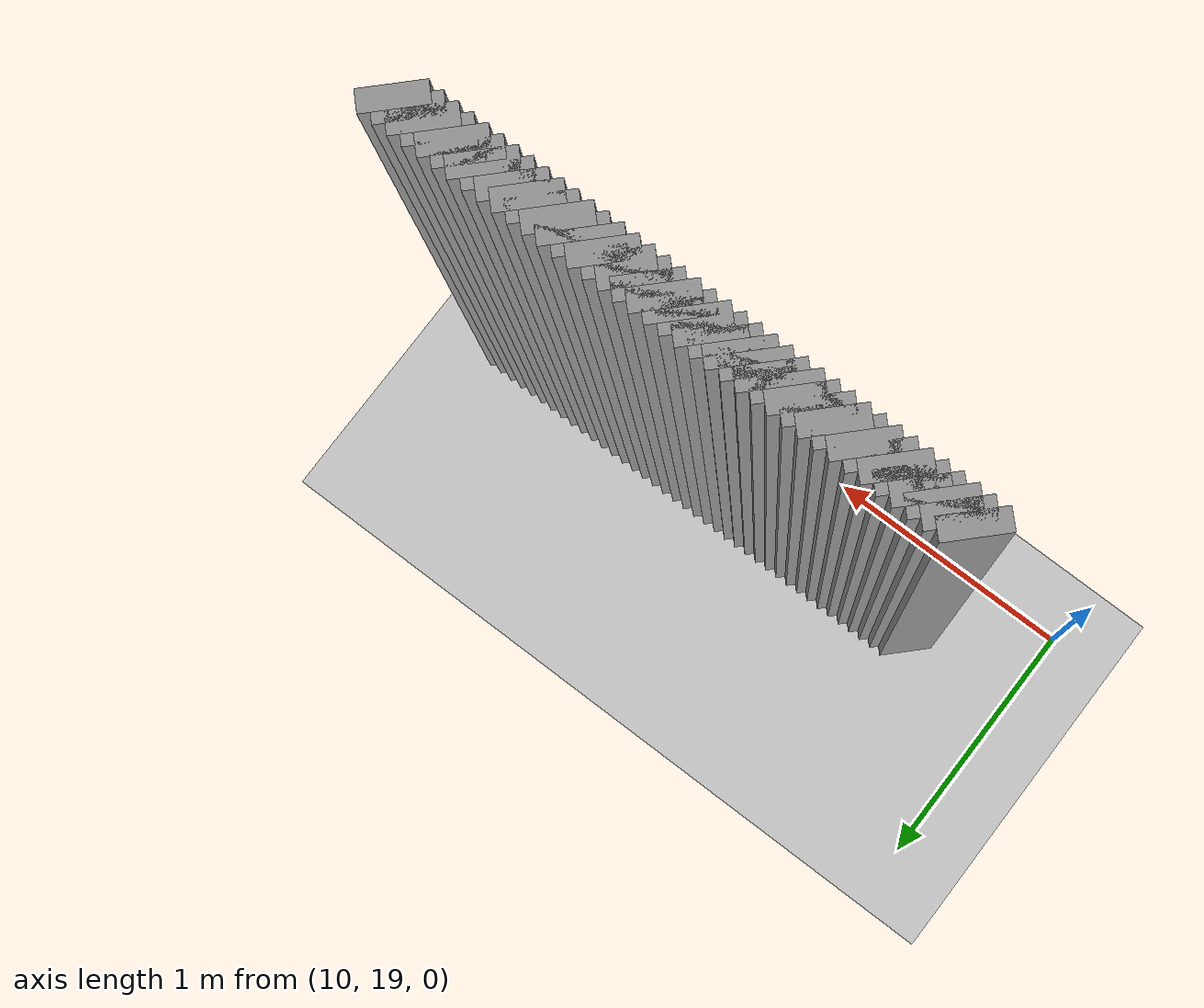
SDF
<sdf version="1.5">
 <world name="default">
  <include><uri>model://ground_plane</uri></include>
  <include><uri>model://sun</uri></include>
  <model name="grey_wall_396">
   <static>1</static>
   <link name="link">
    <pose>10.45 19.35  1.4 0 0 -0.785398163397</pose>
    <collision name="collision"><geometry><box><size>0.0707106781187 .2  2.8</size></box></geometry></collision>
    <visual name="visual">
     <cast_shadows>0</cast_shadows>
     <geometry><box><size>0.0707106781187 .2  2.8</size></box></geometry>
     <material>
      <script>
       <uri>model://grey_wall/materials/scripts</uri>
       <uri>model://grey_wall/materials/textures</uri>
       <name>vrc/grey_wall</name>
      </script>
     </material>
    </visual>
   </link>
  </model>
  <model name="grey_wall_397">
   <static>1</static>
   <link name="link">
    <pose>10.5 19.35  1.4 0 0 -0.785398163397</pose>
    <collision name="collision"><geometry><box><size>0.0707106781187 .2  2.8</size></box></geometry></collision>
    <visual name="visual">
     <cast_shadows>0</cast_shadows>
     <geometry><box><size>0.0707106781187 .2  2.8</size></box></geometry>
     <material>
      <script>
       <uri>model://grey_wall/materials/scripts</uri>
       <uri>model://grey_wall/materials/textures</uri>
       <name>vrc/grey_wall</name>
      </script>
     </material>
    </visual>
   </link>
  </model>
  <model name="grey_wall_398">
   <static>1</static>
   <link name="link">
    <pose>10.55 19.35  1.4 0 0 -0.785398163397</pose>
    <collision name="collision"><geometry><box><size>0.0707106781187 .2  2.8</size></box></geometry></collision>
    <visual name="visual">
     <cast_shadows>0</cast_shadows>
     <geometry><box><size>0.0707106781187 .2  2.8</size></box></geometry>
     <material>
      <script>
       <uri>model://grey_wall/materials/scripts</uri>
       <uri>model://grey_wall/materials/textures</uri>
       <name>vrc/grey_wall</name>
      </script>
     </material>
    </visual>
   </link>
  </model>
  <model name="grey_wall_399">
   <static>1</static>
   <link name="link">
    <pose>10.6 19.35  1.4 0 0 -0.785398163397</pose>
    <collision name="collision"><geometry><box><size>0.0707106781187 .2  2.8</size></box></geometry></collision>
    <visual name="visual">
     <cast_shadows>0</cast_shadows>
     <geometry><box><size>0.0707106781187 .2  2.8</size></box></geometry>
     <material>
      <script>
       <uri>model://grey_wall/materials/scripts</uri>
       <uri>model://grey_wall/materials/textures</uri>
       <name>vrc/grey_wall</name>
      </script>
     </material>
    </visual>
   </link>
  </model>
  <model name="grey_wall_400">
   <static>1</static>
   <link name="link">
    <pose>10.65 19.35  1.4 0 0 -0.785398163397</pose>
    <collision name="collision"><geometry><box><size>0.0707106781187 .2  2.8</size></box></geometry></collision>
    <visual name="visual">
     <cast_shadows>0</cast_shadows>
     <geometry><box><size>0.0707106781187 .2  2.8</size></box></geometry>
     <material>
      <script>
       <uri>model://grey_wall/materials/scripts</uri>
       <uri>model://grey_wall/materials/textures</uri>
       <name>vrc/grey_wall</name>
      </script>
     </material>
    </visual>
   </link>
  </model>
  <model name="grey_wall_401">
   <static>1</static>
   <link name="link">
    <pose>10.7 19.35  1.4 0 0 -0.785398163397</pose>
    <collision name="collision"><geometry><box><size>0.0707106781187 .2  2.8</size></box></geometry></collision>
    <visual name="visual">
     <cast_shadows>0</cast_shadows>
     <geometry><box><size>0.0707106781187 .2  2.8</size></box></geometry>
     <material>
      <script>
       <uri>model://grey_wall/materials/scripts</uri>
       <uri>model://grey_wall/materials/textures</uri>
       <name>vrc/grey_wall</name>
      </script>
     </material>
    </visual>
   </link>
  </model>
  <model name="grey_wall_402">
   <static>1</static>
   <link name="link">
    <pose>10.75 19.35  1.4 0 0 -0.785398163397</pose>
    <collision name="collision"><geometry><box><size>0.0707106781187 .2  2.8</size></box></geometry></collision>
    <visual name="visual">
     <cast_shadows>0</cast_shadows>
     <geometry><box><size>0.0707106781187 .2  2.8</size></box></geometry>
     <material>
      <script>
       <uri>model://grey_wall/materials/scripts</uri>
       <uri>model://grey_wall/materials/textures</uri>
       <name>vrc/grey_wall</name>
      </script>
     </material>
    </visual>
   </link>
  </model>
  <model name="grey_wall_403">
   <static>1</static>
   <link name="link">
    <pose>10.8 19.35  1.4 0 0 -0.785398163397</pose>
    <collision name="collision"><geometry><box><size>0.0707106781187 .2  2.8</size></box></geometry></collision>
    <visual name="visual">
     <cast_shadows>0</cast_shadows>
     <geometry><box><size>0.0707106781187 .2  2.8</size></box></geometry>
     <material>
      <script>
       <uri>model://grey_wall/materials/scripts</uri>
       <uri>model://grey_wall/materials/textures</uri>
       <name>vrc/grey_wall</name>
      </script>
     </material>
    </visual>
   </link>
  </model>
  <model name="grey_wall_404">
   <static>1</static>
   <link name="link">
    <pose>10.85 19.35  1.4 0 0 -0.785398163397</pose>
    <collision name="collision"><geometry><box><size>0.0707106781187 .2  2.8</size></box></geometry></collision>
    <visual name="visual">
     <cast_shadows>0</cast_shadows>
     <geometry><box><size>0.0707106781187 .2  2.8</size></box></geometry>
     <material>
      <script>
       <uri>model://grey_wall/materials/scripts</uri>
       <uri>model://grey_wall/materials/textures</uri>
       <name>vrc/grey_wall</name>
      </script>
     </material>
    </visual>
   </link>
  </model>
  <model name="grey_wall_405">
   <static>1</static>
   <link name="link">
    <pose>10.9 19.35  1.4 0 0 -0.785398163397</pose>
    <collision name="collision"><geometry><box><size>0.0707106781187 .2  2.8</size></box></geometry></collision>
    <visual name="visual">
     <cast_shadows>0</cast_shadows>
     <geometry><box><size>0.0707106781187 .2  2.8</size></box></geometry>
     <material>
      <script>
       <uri>model://grey_wall/materials/scripts</uri>
       <uri>model://grey_wall/materials/textures</uri>
       <name>vrc/grey_wall</name>
      </script>
     </material>
    </visual>
   </link>
  </model>
  <model name="grey_wall_406">
   <static>1</static>
   <link name="link">
    <pose>10.95 19.35  1.4 0 0 -0.785398163397</pose>
    <collision name="collision"><geometry><box><size>0.0707106781187 .2  2.8</size></box></geometry></collision>
    <visual name="visual">
     <cast_shadows>0</cast_shadows>
     <geometry><box><size>0.0707106781187 .2  2.8</size></box></geometry>
     <material>
      <script>
       <uri>model://grey_wall/materials/scripts</uri>
       <uri>model://grey_wall/materials/textures</uri>
       <name>vrc/grey_wall</name>
      </script>
     </material>
    </visual>
   </link>
  </model>
  <model name="grey_wall_407">
   <static>1</static>
   <link name="link">
    <pose>11.0 19.35  1.4 0 0 -0.785398163397</pose>
    <collision name="collision"><geometry><box><size>0.0707106781187 .2  2.8</size></box></geometry></collision>
    <visual name="visual">
     <cast_shadows>0</cast_shadows>
     <geometry><box><size>0.0707106781187 .2  2.8</size></box></geometry>
     <material>
      <script>
       <uri>model://grey_wall/materials/scripts</uri>
       <uri>model://grey_wall/materials/textures</uri>
       <name>vrc/grey_wall</name>
      </script>
     </material>
    </visual>
   </link>
  </model>
  <model name="grey_wall_408">
   <static>1</static>
   <link name="link">
    <pose>11.05 19.35  1.4 0 0 -0.785398163397</pose>
    <collision name="collision"><geometry><box><size>0.0707106781187 .2  2.8</size></box></geometry></collision>
    <visual name="visual">
     <cast_shadows>0</cast_shadows>
     <geometry><box><size>0.0707106781187 .2  2.8</size></box></geometry>
     <material>
      <script>
       <uri>model://grey_wall/materials/scripts</uri>
       <uri>model://grey_wall/materials/textures</uri>
       <name>vrc/grey_wall</name>
      </script>
     </material>
    </visual>
   </link>
  </model>
  <model name="grey_wall_409">
   <static>1</static>
   <link name="link">
    <pose>11.1 19.35  1.4 0 0 -0.785398163397</pose>
    <collision name="collision"><geometry><box><size>0.0707106781187 .2  2.8</size></box></geometry></collision>
    <visual name="visual">
     <cast_shadows>0</cast_shadows>
     <geometry><box><size>0.0707106781187 .2  2.8</size></box></geometry>
     <material>
      <script>
       <uri>model://grey_wall/materials/scripts</uri>
       <uri>model://grey_wall/materials/textures</uri>
       <name>vrc/grey_wall</name>
      </script>
     </material>
    </visual>
   </link>
  </model>
  <model name="grey_wall_410">
   <static>1</static>
   <link name="link">
    <pose>11.15 19.35  1.4 0 0 -0.785398163397</pose>
    <collision name="collision"><geometry><box><size>0.0707106781187 .2  2.8</size></box></geometry></collision>
    <visual name="visual">
     <cast_shadows>0</cast_shadows>
     <geometry><box><size>0.0707106781187 .2  2.8</size></box></geometry>
     <material>
      <script>
       <uri>model://grey_wall/materials/scripts</uri>
       <uri>model://grey_wall/materials/textures</uri>
       <name>vrc/grey_wall</name>
      </script>
     </material>
    </visual>
   </link>
  </model>
  <model name="grey_wall_411">
   <static>1</static>
   <link name="link">
    <pose>11.2 19.35  1.4 0 0 -0.785398163397</pose>
    <collision name="collision"><geometry><box><size>0.0707106781187 .2  2.8</size></box></geometry></collision>
    <visual name="visual">
     <cast_shadows>0</cast_shadows>
     <geometry><box><size>0.0707106781187 .2  2.8</size></box></geometry>
     <material>
      <script>
       <uri>model://grey_wall/materials/scripts</uri>
       <uri>model://grey_wall/materials/textures</uri>
       <name>vrc/grey_wall</name>
      </script>
     </material>
    </visual>
   </link>
  </model>
  <model name="grey_wall_412">
   <static>1</static>
   <link name="link">
    <pose>11.25 19.35  1.4 0 0 -0.785398163397</pose>
    <collision name="collision"><geometry><box><size>0.0707106781187 .2  2.8</size></box></geometry></collision>
    <visual name="visual">
     <cast_shadows>0</cast_shadows>
     <geometry><box><size>0.0707106781187 .2  2.8</size></box></geometry>
     <material>
      <script>
       <uri>model://grey_wall/materials/scripts</uri>
       <uri>model://grey_wall/materials/textures</uri>
       <name>vrc/grey_wall</name>
      </script>
     </material>
    </visual>
   </link>
  </model>
  <model name="grey_wall_413">
   <static>1</static>
   <link name="link">
    <pose>11.3 19.35  1.4 0 0 -0.785398163397</pose>
    <collision name="collision"><geometry><box><size>0.0707106781187 .2  2.8</size></box></geometry></collision>
    <visual name="visual">
     <cast_shadows>0</cast_shadows>
     <geometry><box><size>0.0707106781187 .2  2.8</size></box></geometry>
     <material>
      <script>
       <uri>model://grey_wall/materials/scripts</uri>
       <uri>model://grey_wall/materials/textures</uri>
       <name>vrc/grey_wall</name>
      </script>
     </material>
    </visual>
   </link>
  </model>
  <model name="grey_wall_414">
   <static>1</static>
   <link name="link">
    <pose>11.35 19.35  1.4 0 0 -0.785398163397</pose>
    <collision name="collision"><geometry><box><size>0.0707106781187 .2  2.8</size></box></geometry></collision>
    <visual name="visual">
     <cast_shadows>0</cast_shadows>
     <geometry><box><size>0.0707106781187 .2  2.8</size></box></geometry>
     <material>
      <script>
       <uri>model://grey_wall/materials/scripts</uri>
       <uri>model://grey_wall/materials/textures</uri>
       <name>vrc/grey_wall</name>
      </script>
     </material>
    </visual>
   </link>
  </model>
  <model name="grey_wall_415">
   <static>1</static>
   <link name="link">
    <pose>11.4 19.35  1.4 0 0 -0.785398163397</pose>
    <collision name="collision"><geometry><box><size>0.0707106781187 .2  2.8</size></box></geometry></collision>
    <visual name="visual">
     <cast_shadows>0</cast_shadows>
     <geometry><box><size>0.0707106781187 .2  2.8</size></box></geometry>
     <material>
      <script>
       <uri>model://grey_wall/materials/scripts</uri>
       <uri>model://grey_wall/materials/textures</uri>
       <name>vrc/grey_wall</name>
      </script>
     </material>
    </visual>
   </link>
  </model>
  <model name="grey_wall_416">
   <static>1</static>
   <link name="link">
    <pose>11.45 19.35  1.4 0 0 -0.785398163397</pose>
    <collision name="collision"><geometry><box><size>0.0707106781187 .2  2.8</size></box></geometry></collision>
    <visual name="visual">
     <cast_shadows>0</cast_shadows>
     <geometry><box><size>0.0707106781187 .2  2.8</size></box></geometry>
     <material>
      <script>
       <uri>model://grey_wall/materials/scripts</uri>
       <uri>model://grey_wall/materials/textures</uri>
       <name>vrc/grey_wall</name>
      </script>
     </material>
    </visual>
   </link>
  </model>
  <model name="grey_wall_417">
   <static>1</static>
   <link name="link">
    <pose>11.5 19.35  1.4 0 0 -0.785398163397</pose>
    <collision name="collision"><geometry><box><size>0.0707106781187 .2  2.8</size></box></geometry></collision>
    <visual name="visual">
     <cast_shadows>0</cast_shadows>
     <geometry><box><size>0.0707106781187 .2  2.8</size></box></geometry>
     <material>
      <script>
       <uri>model://grey_wall/materials/scripts</uri>
       <uri>model://grey_wall/materials/textures</uri>
       <name>vrc/grey_wall</name>
      </script>
     </material>
    </visual>
   </link>
  </model>
  <model name="grey_wall_418">
   <static>1</static>
   <link name="link">
    <pose>11.55 19.35  1.4 0 0 -0.785398163397</pose>
    <collision name="collision"><geometry><box><size>0.0707106781187 .2  2.8</size></box></geometry></collision>
    <visual name="visual">
     <cast_shadows>0</cast_shadows>
     <geometry><box><size>0.0707106781187 .2  2.8</size></box></geometry>
     <material>
      <script>
       <uri>model://grey_wall/materials/scripts</uri>
       <uri>model://grey_wall/materials/textures</uri>
       <name>vrc/grey_wall</name>
      </script>
     </material>
    </visual>
   </link>
  </model>
  <model name="grey_wall_419">
   <static>1</static>
   <link name="link">
    <pose>11.6 19.35  1.4 0 0 -0.785398163397</pose>
    <collision name="collision"><geometry><box><size>0.0707106781187 .2  2.8</size></box></geometry></collision>
    <visual name="visual">
     <cast_shadows>0</cast_shadows>
     <geometry><box><size>0.0707106781187 .2  2.8</size></box></geometry>
     <material>
      <script>
       <uri>model://grey_wall/materials/scripts</uri>
       <uri>model://grey_wall/materials/textures</uri>
       <name>vrc/grey_wall</name>
      </script>
     </material>
    </visual>
   </link>
  </model>
  <model name="grey_wall_420">
   <static>1</static>
   <link name="link">
    <pose>11.65 19.35  1.4 0 0 -0.785398163397</pose>
    <collision name="collision"><geometry><box><size>0.0707106781187 .2  2.8</size></box></geometry></collision>
    <visual name="visual">
     <cast_shadows>0</cast_shadows>
     <geometry><box><size>0.0707106781187 .2  2.8</size></box></geometry>
     <material>
      <script>
       <uri>model://grey_wall/materials/scripts</uri>
       <uri>model://grey_wall/materials/textures</uri>
       <name>vrc/grey_wall</name>
      </script>
     </material>
    </visual>
   </link>
  </model>
  <model name="grey_wall_421">
   <static>1</static>
   <link name="link">
    <pose>11.7 19.35  1.4 0 0 -0.785398163397</pose>
    <collision name="collision"><geometry><box><size>0.0707106781187 .2  2.8</size></box></geometry></collision>
    <visual name="visual">
     <cast_shadows>0</cast_shadows>
     <geometry><box><size>0.0707106781187 .2  2.8</size></box></geometry>
     <material>
      <script>
       <uri>model://grey_wall/materials/scripts</uri>
       <uri>model://grey_wall/materials/textures</uri>
       <name>vrc/grey_wall</name>
      </script>
     </material>
    </visual>
   </link>
  </model>
  <model name="grey_wall_422">
   <static>1</static>
   <link name="link">
    <pose>11.75 19.35  1.4 0 0 -0.785398163397</pose>
    <collision name="collision"><geometry><box><size>0.0707106781187 .2  2.8</size></box></geometry></collision>
    <visual name="visual">
     <cast_shadows>0</cast_shadows>
     <geometry><box><size>0.0707106781187 .2  2.8</size></box></geometry>
     <material>
      <script>
       <uri>model://grey_wall/materials/scripts</uri>
       <uri>model://grey_wall/materials/textures</uri>
       <name>vrc/grey_wall</name>
      </script>
     </material>
    </visual>
   </link>
  </model>
  <model name="grey_wall_423">
   <static>1</static>
   <link name="link">
    <pose>11.8 19.35  1.4 0 0 -0.785398163397</pose>
    <collision name="collision"><geometry><box><size>0.0707106781187 .2  2.8</size></box></geometry></collision>
    <visual name="visual">
     <cast_shadows>0</cast_shadows>
     <geometry><box><size>0.0707106781187 .2  2.8</size></box></geometry>
     <material>
      <script>
       <uri>model://grey_wall/materials/scripts</uri>
       <uri>model://grey_wall/materials/textures</uri>
       <name>vrc/grey_wall</name>
      </script>
     </material>
    </visual>
   </link>
  </model>
  <model name="grey_wall_424">
   <static>1</static>
   <link name="link">
    <pose>11.85 19.35  1.4 0 0 -0.785398163397</pose>
    <collision name="collision"><geometry><box><size>0.0707106781187 .2  2.8</size></box></geometry></collision>
    <visual name="visual">
     <cast_shadows>0</cast_shadows>
     <geometry><box><size>0.0707106781187 .2  2.8</size></box></geometry>
     <material>
      <script>
       <uri>model://grey_wall/materials/scripts</uri>
       <uri>model://grey_wall/materials/textures</uri>
       <name>vrc/grey_wall</name>
      </script>
     </material>
    </visual>
   </link>
  </model>
  <model name="grey_wall_425">
   <static>1</static>
   <link name="link">
    <pose>11.9 19.35  1.4 0 0 -0.785398163397</pose>
    <collision name="collision"><geometry><box><size>0.0707106781187 .2  2.8</size></box></geometry></collision>
    <visual name="visual">
     <cast_shadows>0</cast_shadows>
     <geometry><box><size>0.0707106781187 .2  2.8</size></box></geometry>
     <material>
      <script>
       <uri>model://grey_wall/materials/scripts</uri>
       <uri>model://grey_wall/materials/textures</uri>
       <name>vrc/grey_wall</name>
      </script>
     </material>
    </visual>
   </link>
  </model>
  <model name="grey_wall_426">
   <static>1</static>
   <link name="link">
    <pose>11.95 19.35  1.4 0 0 -0.785398163397</pose>
    <collision name="collision"><geometry><box><size>0.0707106781187 .2  2.8</size></box></geometry></collision>
    <visual name="visual">
     <cast_shadows>0</cast_shadows>
     <geometry><box><size>0.0707106781187 .2  2.8</size></box></geometry>
     <material>
      <script>
       <uri>model://grey_wall/materials/scripts</uri>
       <uri>model://grey_wall/materials/textures</uri>
       <name>vrc/grey_wall</name>
      </script>
     </material>
    </visual>
   </link>
  </model>
  <model name="grey_wall_427">
   <static>1</static>
   <link name="link">
    <pose>12.0 19.35  1.4 0 0 -0.785398163397</pose>
    <collision name="collision"><geometry><box><size>0.0707106781187 .2  2.8</size></box></geometry></collision>
    <visual name="visual">
     <cast_shadows>0</cast_shadows>
     <geometry><box><size>0.0707106781187 .2  2.8</size></box></geometry>
     <material>
      <script>
       <uri>model://grey_wall/materials/scripts</uri>
       <uri>model://grey_wall/materials/textures</uri>
       <name>vrc/grey_wall</name>
      </script>
     </material>
    </visual>
   </link>
  </model>
  <model name="grey_wall_428">
   <static>1</static>
   <link name="link">
    <pose>12.05 19.35  1.4 0 0 -0.785398163397</pose>
    <collision name="collision"><geometry><box><size>0.0707106781187 .2  2.8</size></box></geometry></collision>
    <visual name="visual">
     <cast_shadows>0</cast_shadows>
     <geometry><box><size>0.0707106781187 .2  2.8</size></box></geometry>
     <material>
      <script>
       <uri>model://grey_wall/materials/scripts</uri>
       <uri>model://grey_wall/materials/textures</uri>
       <name>vrc/grey_wall</name>
      </script>
     </material>
    </visual>
   </link>
  </model>
  <model name="grey_wall_429">
   <static>1</static>
   <link name="link">
    <pose>12.1 19.35  1.4 0 0 -0.785398163397</pose>
    <collision name="collision"><geometry><box><size>0.0707106781187 .2  2.8</size></box></geometry></collision>
    <visual name="visual">
     <cast_shadows>0</cast_shadows>
     <geometry><box><size>0.0707106781187 .2  2.8</size></box></geometry>
     <material>
      <script>
       <uri>model://grey_wall/materials/scripts</uri>
       <uri>model://grey_wall/materials/textures</uri>
       <name>vrc/grey_wall</name>
      </script>
     </material>
    </visual>
   </link>
  </model>
  <model name="grey_wall_430">
   <static>1</static>
   <link name="link">
    <pose>12.15 19.35  1.4 0 0 -0.785398163397</pose>
    <collision name="collision"><geometry><box><size>0.0707106781187 .2  2.8</size></box></geometry></collision>
    <visual name="visual">
     <cast_shadows>0</cast_shadows>
     <geometry><box><size>0.0707106781187 .2  2.8</size></box></geometry>
     <material>
      <script>
       <uri>model://grey_wall/materials/scripts</uri>
       <uri>model://grey_wall/materials/textures</uri>
       <name>vrc/grey_wall</name>
      </script>
     </material>
    </visual>
   </link>
  </model>
  <model name="grey_wall_431">
   <static>1</static>
   <link name="link">
    <pose>12.2 19.35  1.4 0 0 -0.785398163397</pose>
    <collision name="collision"><geometry><box><size>0.0707106781187 .2  2.8</size></box></geometry></collision>
    <visual name="visual">
     <cast_shadows>0</cast_shadows>
     <geometry><box><size>0.0707106781187 .2  2.8</size></box></geometry>
     <material>
      <script>
       <uri>model://grey_wall/materials/scripts</uri>
       <uri>model://grey_wall/materials/textures</uri>
       <name>vrc/grey_wall</name>
      </script>
     </material>
    </visual>
   </link>
  </model>
  <model name="grey_wall_432">
   <static>1</static>
   <link name="link">
    <pose>12.25 19.35  1.4 0 0 -0.785398163397</pose>
    <collision name="collision"><geometry><box><size>0.0707106781187 .2  2.8</size></box></geometry></collision>
    <visual name="visual">
     <cast_shadows>0</cast_shadows>
     <geometry><box><size>0.0707106781187 .2  2.8</size></box></geometry>
     <material>
      <script>
       <uri>model://grey_wall/materials/scripts</uri>
       <uri>model://grey_wall/materials/textures</uri>
       <name>vrc/grey_wall</name>
      </script>
     </material>
    </visual>
   </link>
  </model>
  <model name="grey_wall_433">
   <static>1</static>
   <link name="link">
    <pose>12.3 19.35  1.4 0 0 -0.785398163397</pose>
    <collision name="collision"><geometry><box><size>0.0707106781187 .2  2.8</size></box></geometry></collision>
    <visual name="visual">
     <cast_shadows>0</cast_shadows>
     <geometry><box><size>0.0707106781187 .2  2.8</size></box></geometry>
     <material>
      <script>
       <uri>model://grey_wall/materials/scripts</uri>
       <uri>model://grey_wall/materials/textures</uri>
       <name>vrc/grey_wall</name>
      </script>
     </material>
    </visual>
   </link>
  </model>
  <model name="grey_wall_434">
   <static>1</static>
   <link name="link">
    <pose>12.35 19.35  1.4 0 0 -0.785398163397</pose>
    <collision name="collision"><geometry><box><size>0.0707106781187 .2  2.8</size></box></geometry></collision>
    <visual name="visual">
     <cast_shadows>0</cast_shadows>
     <geometry><box><size>0.0707106781187 .2  2.8</size></box></geometry>
     <material>
      <script>
       <uri>model://grey_wall/materials/scripts</uri>
       <uri>model://grey_wall/materials/textures</uri>
       <name>vrc/grey_wall</name>
      </script>
     </material>
    </visual>
   </link>
  </model>
 </world>
</sdf>
